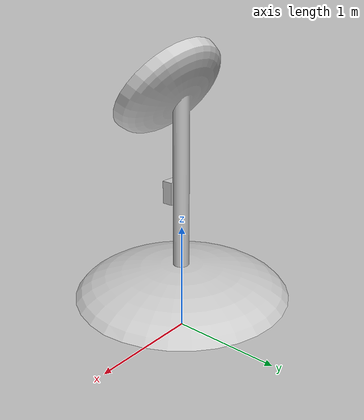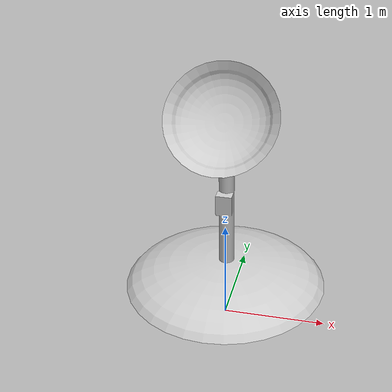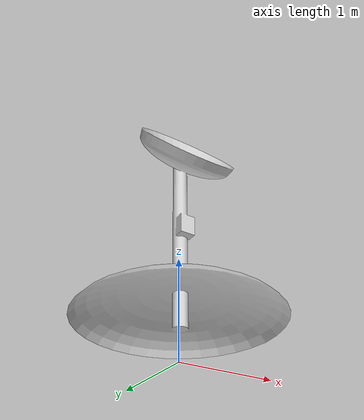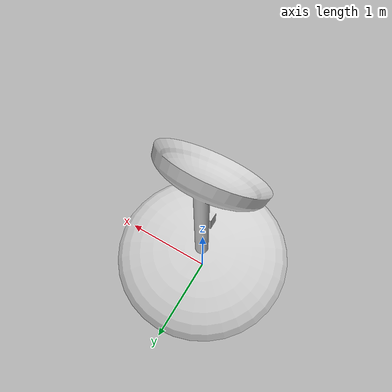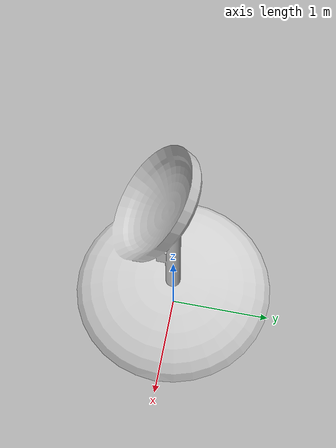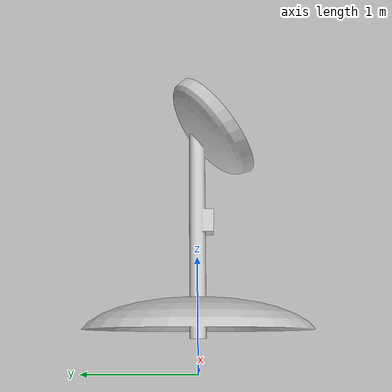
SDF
<?xml version="1.0" ?>
<sdf version="1.6">
  <model name="base_station">
    <pose>0 0 0.4 0 0 0</pose>
    <static>true</static>
    <link name="link">
      <visual name="visual">
        <geometry>
          <mesh>
            <uri>model://base_station/meshes/base_station.dae</uri>
          </mesh>
        </geometry>
      </visual>
    </link>
  </model>
</sdf>
